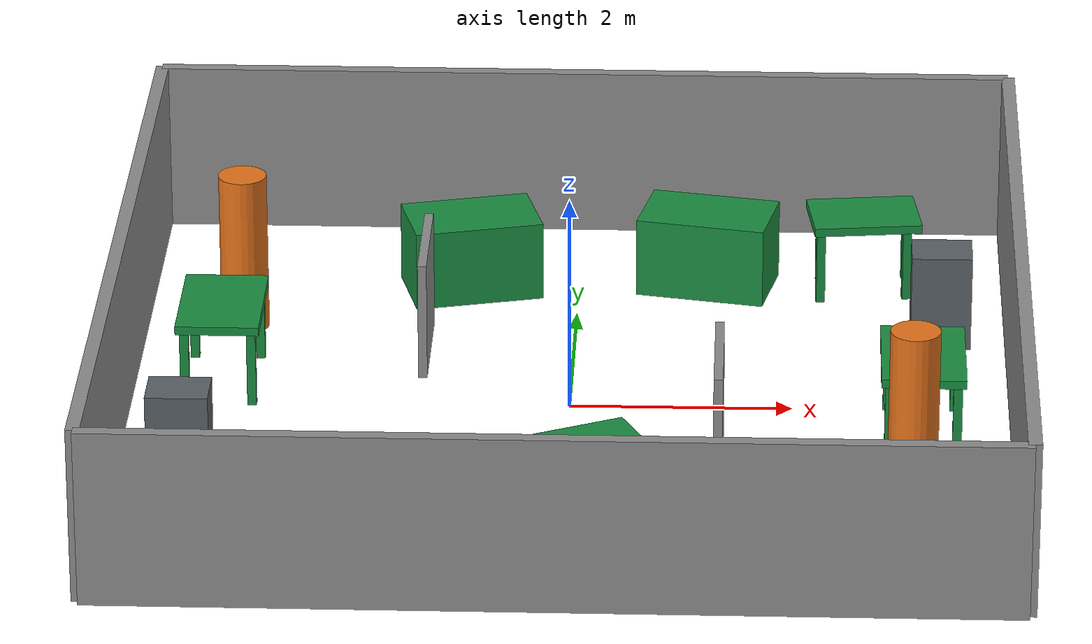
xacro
<?xml version="1.0" encoding="utf-8"?>
<robot name="esdf_test_room" xmlns:xacro="http://www.ros.org/wiki/xacro">

  <material name="wall_gray">
    <color rgba="0.55 0.55 0.55 1.0"/>
  </material>
  <material name="cabinet_gray">
    <color rgba="0.35 0.38 0.40 1.0"/>
  </material>
  <material name="table_green">
    <color rgba="0.10 0.55 0.25 1.0"/>
  </material>
  <material name="column_orange">
    <color rgba="0.90 0.45 0.10 1.0"/>
  </material>

  <xacro:macro name="box_obstacle" params="name size xyz rpy material">
    <link name="${name}">
      <collision>
        <origin xyz="0 0 0" rpy="0 0 0"/>
        <geometry>
          <box size="${size}"/>
        </geometry>
      </collision>
      <visual>
        <origin xyz="0 0 0" rpy="0 0 0"/>
        <geometry>
          <box size="${size}"/>
        </geometry>
        <material name="${material}"/>
      </visual>
    </link>
    <joint name="${name}_joint" type="fixed">
      <origin xyz="${xyz}" rpy="${rpy}"/>
      <parent link="esdf_test_room_base_link"/>
      <child link="${name}"/>
    </joint>
  </xacro:macro>

  <xacro:macro name="cylinder_obstacle" params="name radius length xyz rpy material">
    <link name="${name}">
      <collision>
        <origin xyz="0 0 0" rpy="0 0 0"/>
        <geometry>
          <cylinder radius="${radius}" length="${length}"/>
        </geometry>
      </collision>
      <visual>
        <origin xyz="0 0 0" rpy="0 0 0"/>
        <geometry>
          <cylinder radius="${radius}" length="${length}"/>
        </geometry>
        <material name="${material}"/>
      </visual>
    </link>
    <joint name="${name}_joint" type="fixed">
      <origin xyz="${xyz}" rpy="${rpy}"/>
      <parent link="esdf_test_room_base_link"/>
      <child link="${name}"/>
    </joint>
  </xacro:macro>

  <link name="esdf_test_room_base_link"/>

  <!-- Four low walls around an 8 m x 8 m indoor test area. -->
  <xacro:box_obstacle name="wall_north" size="8.0 0.12 1.6" xyz="0 4.0 0.8" rpy="0 0 0" material="wall_gray"/>
  <xacro:box_obstacle name="wall_south" size="8.0 0.12 1.6" xyz="0 -4.0 0.8" rpy="0 0 0" material="wall_gray"/>
  <xacro:box_obstacle name="wall_east" size="0.12 8.0 1.6" xyz="4.0 0 0.8" rpy="0 0 0" material="wall_gray"/>
  <xacro:box_obstacle name="wall_west" size="0.12 8.0 1.6" xyz="-4.0 0 0.8" rpy="0 0 0" material="wall_gray"/>

  <!-- Office furniture stays close to the walls, leaving Stretch-sized aisles through the center. -->
  <xacro:box_obstacle name="desk_left_top" size="0.75 1.15 0.08" xyz="-3.15 0.45 0.74" rpy="0 0 0" material="table_green"/>
  <xacro:box_obstacle name="desk_left_leg_fl" size="0.08 0.08 0.72" xyz="-2.85 -0.05 0.36" rpy="0 0 0" material="table_green"/>
  <xacro:box_obstacle name="desk_left_leg_fr" size="0.08 0.08 0.72" xyz="-2.85 0.95 0.36" rpy="0 0 0" material="table_green"/>
  <xacro:box_obstacle name="desk_left_leg_bl" size="0.08 0.08 0.72" xyz="-3.45 -0.05 0.36" rpy="0 0 0" material="table_green"/>
  <xacro:box_obstacle name="desk_left_leg_br" size="0.08 0.08 0.72" xyz="-3.45 0.95 0.36" rpy="0 0 0" material="table_green"/>

  <xacro:box_obstacle name="desk_right_top" size="0.75 1.15 0.08" xyz="3.15 -0.45 0.74" rpy="0 0 0" material="table_green"/>
  <xacro:box_obstacle name="desk_right_leg_fl" size="0.08 0.08 0.72" xyz="2.85 -0.95 0.36" rpy="0 0 0" material="table_green"/>
  <xacro:box_obstacle name="desk_right_leg_fr" size="0.08 0.08 0.72" xyz="2.85 0.05 0.36" rpy="0 0 0" material="table_green"/>
  <xacro:box_obstacle name="desk_right_leg_bl" size="0.08 0.08 0.72" xyz="3.45 -0.95 0.36" rpy="0 0 0" material="table_green"/>
  <xacro:box_obstacle name="desk_right_leg_br" size="0.08 0.08 0.72" xyz="3.45 0.05 0.36" rpy="0 0 0" material="table_green"/>

  <xacro:box_obstacle name="file_cabinet_left" size="0.55 0.45 0.9" xyz="-3.35 -1.65 0.45" rpy="0 0 0" material="cabinet_gray"/>
  <xacro:box_obstacle name="file_cabinet_right" size="0.55 0.45 0.9" xyz="3.35 1.55 0.45" rpy="0 0 0" material="cabinet_gray"/>
  <xacro:box_obstacle name="cubicle_partition_left" size="0.08 1.2 1.1" xyz="-1.35 1.15 0.55" rpy="0 0 0" material="wall_gray"/>
  <xacro:box_obstacle name="cubicle_partition_right" size="0.08 1.2 1.1" xyz="1.35 -1.15 0.55" rpy="0 0 0" material="wall_gray"/>

  <!-- Work surfaces and bins add clutter without making the scene huge. -->
  <xacro:box_obstacle name="table_back_left" size="1.2 0.75 0.75" xyz="-1.0 2.55 0.375" rpy="0 0 0.25" material="table_green"/>
  <xacro:box_obstacle name="table_back_right" size="1.2 0.75 0.75" xyz="1.2 2.7 0.375" rpy="0 0 -0.20" material="table_green"/>
  <xacro:box_obstacle name="cart_front" size="1.1 0.55 0.9" xyz="0.15 -2.6 0.45" rpy="0 0 0.45" material="table_green"/>
  <xacro:box_obstacle name="low_box_front_left" size="0.7 0.7 0.5" xyz="-2.65 -2.55 0.25" rpy="0 0 0.30" material="table_green"/>
  <xacro:box_obstacle name="low_box_front_right" size="0.7 0.7 0.5" xyz="2.85 -2.25 0.25" rpy="0 0 -0.30" material="table_green"/>

  <!-- A simple table assembled from a tabletop and four legs. -->
  <xacro:box_obstacle name="table_struct_top" size="1.0 0.7 0.08" xyz="2.65 2.65 0.74" rpy="0 0 0.12" material="table_green"/>
  <xacro:box_obstacle name="table_struct_leg_fl" size="0.08 0.08 0.72" xyz="2.25 2.37 0.36" rpy="0 0 0.12" material="table_green"/>
  <xacro:box_obstacle name="table_struct_leg_fr" size="0.08 0.08 0.72" xyz="3.05 2.47 0.36" rpy="0 0 0.12" material="table_green"/>
  <xacro:box_obstacle name="table_struct_leg_bl" size="0.08 0.08 0.72" xyz="2.25 2.83 0.36" rpy="0 0 0.12" material="table_green"/>
  <xacro:box_obstacle name="table_struct_leg_br" size="0.08 0.08 0.72" xyz="3.05 2.93 0.36" rpy="0 0 0.12" material="table_green"/>

  <xacro:cylinder_obstacle name="column_left" radius="0.22" length="1.5" xyz="-3.05 1.65 0.75" rpy="0 0 0" material="column_orange"/>
  <xacro:cylinder_obstacle name="column_right" radius="0.22" length="1.5" xyz="3.05 -1.55 0.75" rpy="0 0 0" material="column_orange"/>

</robot>
